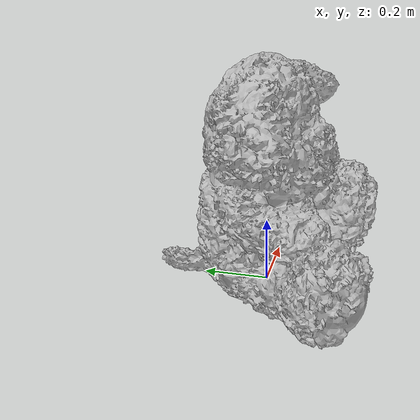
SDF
<?xml version="1.0" ?>
<!--
Mesh and texture: "Dog" by Google (Google Scanned Objects), CC BY 4.0.
See model.config.
-->
<sdf version="1.9">
  <model name="dog">
    <static>true</static>
    <link name="link">
      <visual name="visual">
        <geometry>
          <mesh>
            <uri>model://dog/meshes/model.obj</uri>
            <scale>3.5 3.5 3.5</scale>
          </mesh>
        </geometry>
        <!-- A dog's core is ~311.5 K (38.5 C), but through fur the surface
             reads ~302-307 K (29-34 C). heat_signature.png is the blurred
             grey of the texture, mapped onto that range. -->
        <plugin filename="gz-sim-thermal-system" name="gz::sim::systems::Thermal">
          <heat_signature>model://dog/materials/textures/heat_signature.png</heat_signature>
          <min_temp>302.0</min_temp>
          <max_temp>307.0</max_temp>
        </plugin>
      </visual>
    </link>
  </model>
</sdf>
